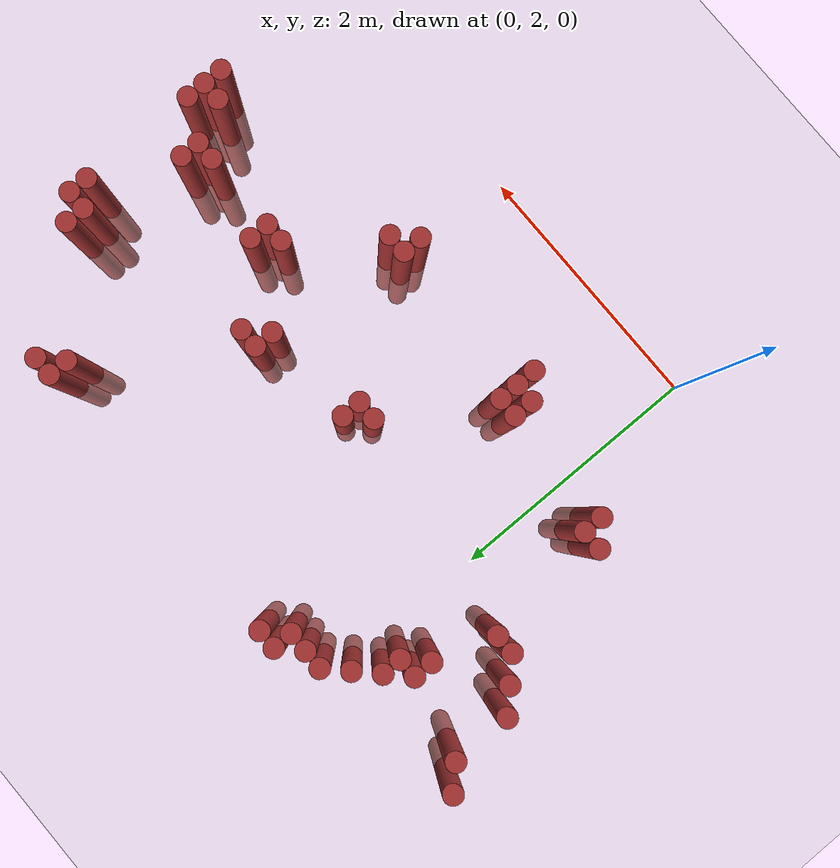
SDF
<sdf version="1.6">
 <world name="default">
  <model name="ground_plane">
   <static>1</static>
   <link name="link">
    <collision name="collision">
     <geometry><plane><normal>0 0 1</normal><size>100 100</size></plane></geometry>
     <surface><friction><ode><mu>100</mu><mu2>50</mu2></ode></friction></surface>
    </collision>
    <visual name="visual">
     <cast_shadows>0</cast_shadows>
     <geometry><plane><normal>0 0 1</normal><size>100 100</size></plane></geometry>
     <material>
      <script><uri>file://media/materials/scripts/gazebo.material</uri><name>Gazebo/Grey</name></script>
     </material>
    </visual>
   </link>
  </model>
  <model name="unit_cylinder_331">
   <static>1</static>
   <pose>-1.025000 5.125000 0.000000 0.000000 0.000000 0.000000</pose>
   <link name="link">
    <inertial>
     <mass>1</mass>
     <inertia><ixx>0.145833</ixx><ixy>0</ixy><ixz>0</ixz><iyy>0.145833</iyy><iyz>0</iyz><izz>0.125</izz></inertia>
    </inertial>
    <collision name="collision">
     <geometry><cylinder><radius>0.075000</radius><length>1.5</length></cylinder></geometry>
    </collision>
    <visual name="visual">
     <geometry><cylinder><radius>0.075000</radius><length>1.5</length></cylinder></geometry>
     <material>
      <ambient>0.648000 0.192000 0.192000 1</ambient>
      <diffuse>0.648000 0.192000 0.192000 1</diffuse>
     </material>
     <material>
      <script><name>Gazebo/Grey</name><uri>file://media/materials/scripts/gazebo.material</uri></script>
     </material>
    </visual>
   </link>
  </model>
  <model name="unit_cylinder_336">
   <static>1</static>
   <pose>-0.875000 4.525000 0.000000 0.000000 0.000000 0.000000</pose>
   <link name="link">
    <inertial>
     <mass>1</mass>
     <inertia><ixx>0.145833</ixx><ixy>0</ixy><ixz>0</ixz><iyy>0.145833</iyy><iyz>0</iyz><izz>0.125</izz></inertia>
    </inertial>
    <collision name="collision">
     <geometry><cylinder><radius>0.075000</radius><length>1.5</length></cylinder></geometry>
    </collision>
    <visual name="visual">
     <geometry><cylinder><radius>0.075000</radius><length>1.5</length></cylinder></geometry>
     <material>
      <ambient>0.648000 0.192000 0.192000 1</ambient>
      <diffuse>0.648000 0.192000 0.192000 1</diffuse>
     </material>
     <material>
      <script><name>Gazebo/Grey</name><uri>file://media/materials/scripts/gazebo.material</uri></script>
     </material>
    </visual>
   </link>
  </model>
  <model name="unit_cylinder_337">
   <static>1</static>
   <pose>-0.875000 4.975000 0.000000 0.000000 0.000000 0.000000</pose>
   <link name="link">
    <inertial>
     <mass>1</mass>
     <inertia><ixx>0.145833</ixx><ixy>0</ixy><ixz>0</ixz><iyy>0.145833</iyy><iyz>0</iyz><izz>0.125</izz></inertia>
    </inertial>
    <collision name="collision">
     <geometry><cylinder><radius>0.075000</radius><length>1.5</length></cylinder></geometry>
    </collision>
    <visual name="visual">
     <geometry><cylinder><radius>0.075000</radius><length>1.5</length></cylinder></geometry>
     <material>
      <ambient>0.648000 0.192000 0.192000 1</ambient>
      <diffuse>0.648000 0.192000 0.192000 1</diffuse>
     </material>
     <material>
      <script><name>Gazebo/Grey</name><uri>file://media/materials/scripts/gazebo.material</uri></script>
     </material>
    </visual>
   </link>
  </model>
  <model name="unit_cylinder_341">
   <static>1</static>
   <pose>-0.725000 4.375000 0.000000 0.000000 0.000000 0.000000</pose>
   <link name="link">
    <inertial>
     <mass>1</mass>
     <inertia><ixx>0.145833</ixx><ixy>0</ixy><ixz>0</ixz><iyy>0.145833</iyy><iyz>0</iyz><izz>0.125</izz></inertia>
    </inertial>
    <collision name="collision">
     <geometry><cylinder><radius>0.075000</radius><length>1.5</length></cylinder></geometry>
    </collision>
    <visual name="visual">
     <geometry><cylinder><radius>0.075000</radius><length>1.5</length></cylinder></geometry>
     <material>
      <ambient>0.648000 0.192000 0.192000 1</ambient>
      <diffuse>0.648000 0.192000 0.192000 1</diffuse>
     </material>
     <material>
      <script><name>Gazebo/Grey</name><uri>file://media/materials/scripts/gazebo.material</uri></script>
     </material>
    </visual>
   </link>
  </model>
  <model name="unit_cylinder_344">
   <static>1</static>
   <pose>-0.575000 4.225000 0.000000 0.000000 0.000000 0.000000</pose>
   <link name="link">
    <inertial>
     <mass>1</mass>
     <inertia><ixx>0.145833</ixx><ixy>0</ixy><ixz>0</ixz><iyy>0.145833</iyy><iyz>0</iyz><izz>0.125</izz></inertia>
    </inertial>
    <collision name="collision">
     <geometry><cylinder><radius>0.075000</radius><length>1.5</length></cylinder></geometry>
    </collision>
    <visual name="visual">
     <geometry><cylinder><radius>0.075000</radius><length>1.5</length></cylinder></geometry>
     <material>
      <ambient>0.648000 0.192000 0.192000 1</ambient>
      <diffuse>0.648000 0.192000 0.192000 1</diffuse>
     </material>
     <material>
      <script><name>Gazebo/Grey</name><uri>file://media/materials/scripts/gazebo.material</uri></script>
     </material>
    </visual>
   </link>
  </model>
  <model name="unit_cylinder_347">
   <static>1</static>
   <pose>-0.425000 3.325000 0.000000 0.000000 0.000000 0.000000</pose>
   <link name="link">
    <inertial>
     <mass>1</mass>
     <inertia><ixx>0.145833</ixx><ixy>0</ixy><ixz>0</ixz><iyy>0.145833</iyy><iyz>0</iyz><izz>0.125</izz></inertia>
    </inertial>
    <collision name="collision">
     <geometry><cylinder><radius>0.075000</radius><length>1.5</length></cylinder></geometry>
    </collision>
    <visual name="visual">
     <geometry><cylinder><radius>0.075000</radius><length>1.5</length></cylinder></geometry>
     <material>
      <ambient>0.648000 0.192000 0.192000 1</ambient>
      <diffuse>0.648000 0.192000 0.192000 1</diffuse>
     </material>
     <material>
      <script><name>Gazebo/Grey</name><uri>file://media/materials/scripts/gazebo.material</uri></script>
     </material>
    </visual>
   </link>
  </model>
  <model name="unit_cylinder_348">
   <static>1</static>
   <pose>-0.425000 4.225000 0.000000 0.000000 0.000000 0.000000</pose>
   <link name="link">
    <inertial>
     <mass>1</mass>
     <inertia><ixx>0.145833</ixx><ixy>0</ixy><ixz>0</ixz><iyy>0.145833</iyy><iyz>0</iyz><izz>0.125</izz></inertia>
    </inertial>
    <collision name="collision">
     <geometry><cylinder><radius>0.075000</radius><length>1.5</length></cylinder></geometry>
    </collision>
    <visual name="visual">
     <geometry><cylinder><radius>0.075000</radius><length>1.5</length></cylinder></geometry>
     <material>
      <ambient>0.648000 0.192000 0.192000 1</ambient>
      <diffuse>0.648000 0.192000 0.192000 1</diffuse>
     </material>
     <material>
      <script><name>Gazebo/Grey</name><uri>file://media/materials/scripts/gazebo.material</uri></script>
     </material>
    </visual>
   </link>
  </model>
  <model name="unit_cylinder_349">
   <static>1</static>
   <pose>-0.275000 3.175000 0.000000 0.000000 0.000000 0.000000</pose>
   <link name="link">
    <inertial>
     <mass>1</mass>
     <inertia><ixx>0.145833</ixx><ixy>0</ixy><ixz>0</ixz><iyy>0.145833</iyy><iyz>0</iyz><izz>0.125</izz></inertia>
    </inertial>
    <collision name="collision">
     <geometry><cylinder><radius>0.075000</radius><length>1.5</length></cylinder></geometry>
    </collision>
    <visual name="visual">
     <geometry><cylinder><radius>0.075000</radius><length>1.5</length></cylinder></geometry>
     <material>
      <ambient>0.648000 0.192000 0.192000 1</ambient>
      <diffuse>0.648000 0.192000 0.192000 1</diffuse>
     </material>
     <material>
      <script><name>Gazebo/Grey</name><uri>file://media/materials/scripts/gazebo.material</uri></script>
     </material>
    </visual>
   </link>
  </model>
  <model name="unit_cylinder_350">
   <static>1</static>
   <pose>-0.275000 3.325000 0.000000 0.000000 0.000000 0.000000</pose>
   <link name="link">
    <inertial>
     <mass>1</mass>
     <inertia><ixx>0.145833</ixx><ixy>0</ixy><ixz>0</ixz><iyy>0.145833</iyy><iyz>0</iyz><izz>0.125</izz></inertia>
    </inertial>
    <collision name="collision">
     <geometry><cylinder><radius>0.075000</radius><length>1.5</length></cylinder></geometry>
    </collision>
    <visual name="visual">
     <geometry><cylinder><radius>0.075000</radius><length>1.5</length></cylinder></geometry>
     <material>
      <ambient>0.648000 0.192000 0.192000 1</ambient>
      <diffuse>0.648000 0.192000 0.192000 1</diffuse>
     </material>
     <material>
      <script><name>Gazebo/Grey</name><uri>file://media/materials/scripts/gazebo.material</uri></script>
     </material>
    </visual>
   </link>
  </model>
  <model name="unit_cylinder_351">
   <static>1</static>
   <pose>-0.275000 4.675000 0.000000 0.000000 0.000000 0.000000</pose>
   <link name="link">
    <inertial>
     <mass>1</mass>
     <inertia><ixx>0.145833</ixx><ixy>0</ixy><ixz>0</ixz><iyy>0.145833</iyy><iyz>0</iyz><izz>0.125</izz></inertia>
    </inertial>
    <collision name="collision">
     <geometry><cylinder><radius>0.075000</radius><length>1.5</length></cylinder></geometry>
    </collision>
    <visual name="visual">
     <geometry><cylinder><radius>0.075000</radius><length>1.5</length></cylinder></geometry>
     <material>
      <ambient>0.648000 0.192000 0.192000 1</ambient>
      <diffuse>0.648000 0.192000 0.192000 1</diffuse>
     </material>
     <material>
      <script><name>Gazebo/Grey</name><uri>file://media/materials/scripts/gazebo.material</uri></script>
     </material>
    </visual>
   </link>
  </model>
  <model name="unit_cylinder_352">
   <static>1</static>
   <pose>-0.275000 4.825000 0.000000 0.000000 0.000000 0.000000</pose>
   <link name="link">
    <inertial>
     <mass>1</mass>
     <inertia><ixx>0.145833</ixx><ixy>0</ixy><ixz>0</ixz><iyy>0.145833</iyy><iyz>0</iyz><izz>0.125</izz></inertia>
    </inertial>
    <collision name="collision">
     <geometry><cylinder><radius>0.075000</radius><length>1.5</length></cylinder></geometry>
    </collision>
    <visual name="visual">
     <geometry><cylinder><radius>0.075000</radius><length>1.5</length></cylinder></geometry>
     <material>
      <ambient>0.648000 0.192000 0.192000 1</ambient>
      <diffuse>0.648000 0.192000 0.192000 1</diffuse>
     </material>
     <material>
      <script><name>Gazebo/Grey</name><uri>file://media/materials/scripts/gazebo.material</uri></script>
     </material>
    </visual>
   </link>
  </model>
  <model name="unit_cylinder_353">
   <static>1</static>
   <pose>-0.125000 4.825000 0.000000 0.000000 0.000000 0.000000</pose>
   <link name="link">
    <inertial>
     <mass>1</mass>
     <inertia><ixx>0.145833</ixx><ixy>0</ixy><ixz>0</ixz><iyy>0.145833</iyy><iyz>0</iyz><izz>0.125</izz></inertia>
    </inertial>
    <collision name="collision">
     <geometry><cylinder><radius>0.075000</radius><length>1.5</length></cylinder></geometry>
    </collision>
    <visual name="visual">
     <geometry><cylinder><radius>0.075000</radius><length>1.5</length></cylinder></geometry>
     <material>
      <ambient>0.648000 0.192000 0.192000 1</ambient>
      <diffuse>0.648000 0.192000 0.192000 1</diffuse>
     </material>
     <material>
      <script><name>Gazebo/Grey</name><uri>file://media/materials/scripts/gazebo.material</uri></script>
     </material>
    </visual>
   </link>
  </model>
  <model name="unit_cylinder_354">
   <static>1</static>
   <pose>-0.125000 4.975000 0.000000 0.000000 0.000000 0.000000</pose>
   <link name="link">
    <inertial>
     <mass>1</mass>
     <inertia><ixx>0.145833</ixx><ixy>0</ixy><ixz>0</ixz><iyy>0.145833</iyy><iyz>0</iyz><izz>0.125</izz></inertia>
    </inertial>
    <collision name="collision">
     <geometry><cylinder><radius>0.075000</radius><length>1.5</length></cylinder></geometry>
    </collision>
    <visual name="visual">
     <geometry><cylinder><radius>0.075000</radius><length>1.5</length></cylinder></geometry>
     <material>
      <ambient>0.648000 0.192000 0.192000 1</ambient>
      <diffuse>0.648000 0.192000 0.192000 1</diffuse>
     </material>
     <material>
      <script><name>Gazebo/Grey</name><uri>file://media/materials/scripts/gazebo.material</uri></script>
     </material>
    </visual>
   </link>
  </model>
  <model name="unit_cylinder_355">
   <static>1</static>
   <pose>0.025000 5.125000 0.000000 0.000000 0.000000 0.000000</pose>
   <link name="link">
    <inertial>
     <mass>1</mass>
     <inertia><ixx>0.145833</ixx><ixy>0</ixy><ixz>0</ixz><iyy>0.145833</iyy><iyz>0</iyz><izz>0.125</izz></inertia>
    </inertial>
    <collision name="collision">
     <geometry><cylinder><radius>0.075000</radius><length>1.5</length></cylinder></geometry>
    </collision>
    <visual name="visual">
     <geometry><cylinder><radius>0.075000</radius><length>1.5</length></cylinder></geometry>
     <material>
      <ambient>0.648000 0.192000 0.192000 1</ambient>
      <diffuse>0.648000 0.192000 0.192000 1</diffuse>
     </material>
     <material>
      <script><name>Gazebo/Grey</name><uri>file://media/materials/scripts/gazebo.material</uri></script>
     </material>
    </visual>
   </link>
  </model>
  <model name="unit_cylinder_356">
   <static>1</static>
   <pose>0.175000 5.275000 0.000000 0.000000 0.000000 0.000000</pose>
   <link name="link">
    <inertial>
     <mass>1</mass>
     <inertia><ixx>0.145833</ixx><ixy>0</ixy><ixz>0</ixz><iyy>0.145833</iyy><iyz>0</iyz><izz>0.125</izz></inertia>
    </inertial>
    <collision name="collision">
     <geometry><cylinder><radius>0.075000</radius><length>1.5</length></cylinder></geometry>
    </collision>
    <visual name="visual">
     <geometry><cylinder><radius>0.075000</radius><length>1.5</length></cylinder></geometry>
     <material>
      <ambient>0.648000 0.192000 0.192000 1</ambient>
      <diffuse>0.648000 0.192000 0.192000 1</diffuse>
     </material>
     <material>
      <script><name>Gazebo/Grey</name><uri>file://media/materials/scripts/gazebo.material</uri></script>
     </material>
    </visual>
   </link>
  </model>
  <model name="unit_cylinder_357">
   <static>1</static>
   <pose>0.325000 5.275000 0.000000 0.000000 0.000000 0.000000</pose>
   <link name="link">
    <inertial>
     <mass>1</mass>
     <inertia><ixx>0.145833</ixx><ixy>0</ixy><ixz>0</ixz><iyy>0.145833</iyy><iyz>0</iyz><izz>0.125</izz></inertia>
    </inertial>
    <collision name="collision">
     <geometry><cylinder><radius>0.075000</radius><length>1.5</length></cylinder></geometry>
    </collision>
    <visual name="visual">
     <geometry><cylinder><radius>0.075000</radius><length>1.5</length></cylinder></geometry>
     <material>
      <ambient>0.648000 0.192000 0.192000 1</ambient>
      <diffuse>0.648000 0.192000 0.192000 1</diffuse>
     </material>
     <material>
      <script><name>Gazebo/Grey</name><uri>file://media/materials/scripts/gazebo.material</uri></script>
     </material>
    </visual>
   </link>
  </model>
  <model name="unit_cylinder_358">
   <static>1</static>
   <pose>0.475000 5.275000 0.000000 0.000000 0.000000 0.000000</pose>
   <link name="link">
    <inertial>
     <mass>1</mass>
     <inertia><ixx>0.145833</ixx><ixy>0</ixy><ixz>0</ixz><iyy>0.145833</iyy><iyz>0</iyz><izz>0.125</izz></inertia>
    </inertial>
    <collision name="collision">
     <geometry><cylinder><radius>0.075000</radius><length>1.5</length></cylinder></geometry>
    </collision>
    <visual name="visual">
     <geometry><cylinder><radius>0.075000</radius><length>1.5</length></cylinder></geometry>
     <material>
      <ambient>0.648000 0.192000 0.192000 1</ambient>
      <diffuse>0.648000 0.192000 0.192000 1</diffuse>
     </material>
     <material>
      <script><name>Gazebo/Grey</name><uri>file://media/materials/scripts/gazebo.material</uri></script>
     </material>
    </visual>
   </link>
  </model>
  <model name="unit_cylinder_359">
   <static>1</static>
   <pose>0.475000 5.425000 0.000000 0.000000 0.000000 0.000000</pose>
   <link name="link">
    <inertial>
     <mass>1</mass>
     <inertia><ixx>0.145833</ixx><ixy>0</ixy><ixz>0</ixz><iyy>0.145833</iyy><iyz>0</iyz><izz>0.125</izz></inertia>
    </inertial>
    <collision name="collision">
     <geometry><cylinder><radius>0.075000</radius><length>1.5</length></cylinder></geometry>
    </collision>
    <visual name="visual">
     <geometry><cylinder><radius>0.075000</radius><length>1.5</length></cylinder></geometry>
     <material>
      <ambient>0.648000 0.192000 0.192000 1</ambient>
      <diffuse>0.648000 0.192000 0.192000 1</diffuse>
     </material>
     <material>
      <script><name>Gazebo/Grey</name><uri>file://media/materials/scripts/gazebo.material</uri></script>
     </material>
    </visual>
   </link>
  </model>
  <model name="unit_cylinder_360">
   <static>1</static>
   <pose>0.625000 3.025000 0.000000 0.000000 0.000000 0.000000</pose>
   <link name="link">
    <inertial>
     <mass>1</mass>
     <inertia><ixx>0.145833</ixx><ixy>0</ixy><ixz>0</ixz><iyy>0.145833</iyy><iyz>0</iyz><izz>0.125</izz></inertia>
    </inertial>
    <collision name="collision">
     <geometry><cylinder><radius>0.075000</radius><length>1.5</length></cylinder></geometry>
    </collision>
    <visual name="visual">
     <geometry><cylinder><radius>0.075000</radius><length>1.5</length></cylinder></geometry>
     <material>
      <ambient>0.648000 0.192000 0.192000 1</ambient>
      <diffuse>0.648000 0.192000 0.192000 1</diffuse>
     </material>
     <material>
      <script><name>Gazebo/Grey</name><uri>file://media/materials/scripts/gazebo.material</uri></script>
     </material>
    </visual>
   </link>
  </model>
  <model name="unit_cylinder_361">
   <static>1</static>
   <pose>0.625000 3.175000 0.000000 0.000000 0.000000 0.000000</pose>
   <link name="link">
    <inertial>
     <mass>1</mass>
     <inertia><ixx>0.145833</ixx><ixy>0</ixy><ixz>0</ixz><iyy>0.145833</iyy><iyz>0</iyz><izz>0.125</izz></inertia>
    </inertial>
    <collision name="collision">
     <geometry><cylinder><radius>0.075000</radius><length>1.5</length></cylinder></geometry>
    </collision>
    <visual name="visual">
     <geometry><cylinder><radius>0.075000</radius><length>1.5</length></cylinder></geometry>
     <material>
      <ambient>0.648000 0.192000 0.192000 1</ambient>
      <diffuse>0.648000 0.192000 0.192000 1</diffuse>
     </material>
     <material>
      <script><name>Gazebo/Grey</name><uri>file://media/materials/scripts/gazebo.material</uri></script>
     </material>
    </visual>
   </link>
  </model>
  <model name="unit_cylinder_362">
   <static>1</static>
   <pose>0.625000 5.425000 0.000000 0.000000 0.000000 0.000000</pose>
   <link name="link">
    <inertial>
     <mass>1</mass>
     <inertia><ixx>0.145833</ixx><ixy>0</ixy><ixz>0</ixz><iyy>0.145833</iyy><iyz>0</iyz><izz>0.125</izz></inertia>
    </inertial>
    <collision name="collision">
     <geometry><cylinder><radius>0.075000</radius><length>1.5</length></cylinder></geometry>
    </collision>
    <visual name="visual">
     <geometry><cylinder><radius>0.075000</radius><length>1.5</length></cylinder></geometry>
     <material>
      <ambient>0.648000 0.192000 0.192000 1</ambient>
      <diffuse>0.648000 0.192000 0.192000 1</diffuse>
     </material>
     <material>
      <script><name>Gazebo/Grey</name><uri>file://media/materials/scripts/gazebo.material</uri></script>
     </material>
    </visual>
   </link>
  </model>
  <model name="unit_cylinder_364">
   <static>1</static>
   <pose>0.775000 2.875000 0.000000 0.000000 0.000000 0.000000</pose>
   <link name="link">
    <inertial>
     <mass>1</mass>
     <inertia><ixx>0.145833</ixx><ixy>0</ixy><ixz>0</ixz><iyy>0.145833</iyy><iyz>0</iyz><izz>0.125</izz></inertia>
    </inertial>
    <collision name="collision">
     <geometry><cylinder><radius>0.075000</radius><length>1.5</length></cylinder></geometry>
    </collision>
    <visual name="visual">
     <geometry><cylinder><radius>0.075000</radius><length>1.5</length></cylinder></geometry>
     <material>
      <ambient>0.648000 0.192000 0.192000 1</ambient>
      <diffuse>0.648000 0.192000 0.192000 1</diffuse>
     </material>
     <material>
      <script><name>Gazebo/Grey</name><uri>file://media/materials/scripts/gazebo.material</uri></script>
     </material>
    </visual>
   </link>
  </model>
  <model name="unit_cylinder_365">
   <static>1</static>
   <pose>0.775000 3.025000 0.000000 0.000000 0.000000 0.000000</pose>
   <link name="link">
    <inertial>
     <mass>1</mass>
     <inertia><ixx>0.145833</ixx><ixy>0</ixy><ixz>0</ixz><iyy>0.145833</iyy><iyz>0</iyz><izz>0.125</izz></inertia>
    </inertial>
    <collision name="collision">
     <geometry><cylinder><radius>0.075000</radius><length>1.5</length></cylinder></geometry>
    </collision>
    <visual name="visual">
     <geometry><cylinder><radius>0.075000</radius><length>1.5</length></cylinder></geometry>
     <material>
      <ambient>0.648000 0.192000 0.192000 1</ambient>
      <diffuse>0.648000 0.192000 0.192000 1</diffuse>
     </material>
     <material>
      <script><name>Gazebo/Grey</name><uri>file://media/materials/scripts/gazebo.material</uri></script>
     </material>
    </visual>
   </link>
  </model>
  <model name="unit_cylinder_366">
   <static>1</static>
   <pose>0.775000 3.175000 0.000000 0.000000 0.000000 0.000000</pose>
   <link name="link">
    <inertial>
     <mass>1</mass>
     <inertia><ixx>0.145833</ixx><ixy>0</ixy><ixz>0</ixz><iyy>0.145833</iyy><iyz>0</iyz><izz>0.125</izz></inertia>
    </inertial>
    <collision name="collision">
     <geometry><cylinder><radius>0.075000</radius><length>1.5</length></cylinder></geometry>
    </collision>
    <visual name="visual">
     <geometry><cylinder><radius>0.075000</radius><length>1.5</length></cylinder></geometry>
     <material>
      <ambient>0.648000 0.192000 0.192000 1</ambient>
      <diffuse>0.648000 0.192000 0.192000 1</diffuse>
     </material>
     <material>
      <script><name>Gazebo/Grey</name><uri>file://media/materials/scripts/gazebo.material</uri></script>
     </material>
    </visual>
   </link>
  </model>
  <model name="unit_cylinder_374">
   <static>1</static>
   <pose>1.225000 3.925000 0.000000 0.000000 0.000000 0.000000</pose>
   <link name="link">
    <inertial>
     <mass>1</mass>
     <inertia><ixx>0.145833</ixx><ixy>0</ixy><ixz>0</ixz><iyy>0.145833</iyy><iyz>0</iyz><izz>0.125</izz></inertia>
    </inertial>
    <collision name="collision">
     <geometry><cylinder><radius>0.075000</radius><length>1.5</length></cylinder></geometry>
    </collision>
    <visual name="visual">
     <geometry><cylinder><radius>0.075000</radius><length>1.5</length></cylinder></geometry>
     <material>
      <ambient>0.648000 0.192000 0.192000 1</ambient>
      <diffuse>0.648000 0.192000 0.192000 1</diffuse>
     </material>
     <material>
      <script><name>Gazebo/Grey</name><uri>file://media/materials/scripts/gazebo.material</uri></script>
     </material>
    </visual>
   </link>
  </model>
  <model name="unit_cylinder_377">
   <static>1</static>
   <pose>1.375000 3.925000 0.000000 0.000000 0.000000 0.000000</pose>
   <link name="link">
    <inertial>
     <mass>1</mass>
     <inertia><ixx>0.145833</ixx><ixy>0</ixy><ixz>0</ixz><iyy>0.145833</iyy><iyz>0</iyz><izz>0.125</izz></inertia>
    </inertial>
    <collision name="collision">
     <geometry><cylinder><radius>0.075000</radius><length>1.5</length></cylinder></geometry>
    </collision>
    <visual name="visual">
     <geometry><cylinder><radius>0.075000</radius><length>1.5</length></cylinder></geometry>
     <material>
      <ambient>0.648000 0.192000 0.192000 1</ambient>
      <diffuse>0.648000 0.192000 0.192000 1</diffuse>
     </material>
     <material>
      <script><name>Gazebo/Grey</name><uri>file://media/materials/scripts/gazebo.material</uri></script>
     </material>
    </visual>
   </link>
  </model>
  <model name="unit_cylinder_378">
   <static>1</static>
   <pose>1.375000 4.075000 0.000000 0.000000 0.000000 0.000000</pose>
   <link name="link">
    <inertial>
     <mass>1</mass>
     <inertia><ixx>0.145833</ixx><ixy>0</ixy><ixz>0</ixz><iyy>0.145833</iyy><iyz>0</iyz><izz>0.125</izz></inertia>
    </inertial>
    <collision name="collision">
     <geometry><cylinder><radius>0.075000</radius><length>1.5</length></cylinder></geometry>
    </collision>
    <visual name="visual">
     <geometry><cylinder><radius>0.075000</radius><length>1.5</length></cylinder></geometry>
     <material>
      <ambient>0.648000 0.192000 0.192000 1</ambient>
      <diffuse>0.648000 0.192000 0.192000 1</diffuse>
     </material>
     <material>
      <script><name>Gazebo/Grey</name><uri>file://media/materials/scripts/gazebo.material</uri></script>
     </material>
    </visual>
   </link>
  </model>
  <model name="unit_cylinder_397">
   <static>1</static>
   <pose>1.975000 2.875000 0.000000 0.000000 0.000000 0.000000</pose>
   <link name="link">
    <inertial>
     <mass>1</mass>
     <inertia><ixx>0.145833</ixx><ixy>0</ixy><ixz>0</ixz><iyy>0.145833</iyy><iyz>0</iyz><izz>0.125</izz></inertia>
    </inertial>
    <collision name="collision">
     <geometry><cylinder><radius>0.075000</radius><length>1.5</length></cylinder></geometry>
    </collision>
    <visual name="visual">
     <geometry><cylinder><radius>0.075000</radius><length>1.5</length></cylinder></geometry>
     <material>
      <ambient>0.648000 0.192000 0.192000 1</ambient>
      <diffuse>0.648000 0.192000 0.192000 1</diffuse>
     </material>
     <material>
      <script><name>Gazebo/Grey</name><uri>file://media/materials/scripts/gazebo.material</uri></script>
     </material>
    </visual>
   </link>
  </model>
  <model name="unit_cylinder_398">
   <static>1</static>
   <pose>1.975000 3.025000 0.000000 0.000000 0.000000 0.000000</pose>
   <link name="link">
    <inertial>
     <mass>1</mass>
     <inertia><ixx>0.145833</ixx><ixy>0</ixy><ixz>0</ixz><iyy>0.145833</iyy><iyz>0</iyz><izz>0.125</izz></inertia>
    </inertial>
    <collision name="collision">
     <geometry><cylinder><radius>0.075000</radius><length>1.5</length></cylinder></geometry>
    </collision>
    <visual name="visual">
     <geometry><cylinder><radius>0.075000</radius><length>1.5</length></cylinder></geometry>
     <material>
      <ambient>0.648000 0.192000 0.192000 1</ambient>
      <diffuse>0.648000 0.192000 0.192000 1</diffuse>
     </material>
     <material>
      <script><name>Gazebo/Grey</name><uri>file://media/materials/scripts/gazebo.material</uri></script>
     </material>
    </visual>
   </link>
  </model>
  <model name="unit_cylinder_401">
   <static>1</static>
   <pose>2.125000 3.025000 0.000000 0.000000 0.000000 0.000000</pose>
   <link name="link">
    <inertial>
     <mass>1</mass>
     <inertia><ixx>0.145833</ixx><ixy>0</ixy><ixz>0</ixz><iyy>0.145833</iyy><iyz>0</iyz><izz>0.125</izz></inertia>
    </inertial>
    <collision name="collision">
     <geometry><cylinder><radius>0.075000</radius><length>1.5</length></cylinder></geometry>
    </collision>
    <visual name="visual">
     <geometry><cylinder><radius>0.075000</radius><length>1.5</length></cylinder></geometry>
     <material>
      <ambient>0.648000 0.192000 0.192000 1</ambient>
      <diffuse>0.648000 0.192000 0.192000 1</diffuse>
     </material>
     <material>
      <script><name>Gazebo/Grey</name><uri>file://media/materials/scripts/gazebo.material</uri></script>
     </material>
    </visual>
   </link>
  </model>
  <model name="unit_cylinder_402">
   <static>1</static>
   <pose>2.125000 4.075000 0.000000 0.000000 0.000000 0.000000</pose>
   <link name="link">
    <inertial>
     <mass>1</mass>
     <inertia><ixx>0.145833</ixx><ixy>0</ixy><ixz>0</ixz><iyy>0.145833</iyy><iyz>0</iyz><izz>0.125</izz></inertia>
    </inertial>
    <collision name="collision">
     <geometry><cylinder><radius>0.075000</radius><length>1.5</length></cylinder></geometry>
    </collision>
    <visual name="visual">
     <geometry><cylinder><radius>0.075000</radius><length>1.5</length></cylinder></geometry>
     <material>
      <ambient>0.648000 0.192000 0.192000 1</ambient>
      <diffuse>0.648000 0.192000 0.192000 1</diffuse>
     </material>
     <material>
      <script><name>Gazebo/Grey</name><uri>file://media/materials/scripts/gazebo.material</uri></script>
     </material>
    </visual>
   </link>
  </model>
  <model name="unit_cylinder_403">
   <static>1</static>
   <pose>2.125000 4.225000 0.000000 0.000000 0.000000 0.000000</pose>
   <link name="link">
    <inertial>
     <mass>1</mass>
     <inertia><ixx>0.145833</ixx><ixy>0</ixy><ixz>0</ixz><iyy>0.145833</iyy><iyz>0</iyz><izz>0.125</izz></inertia>
    </inertial>
    <collision name="collision">
     <geometry><cylinder><radius>0.075000</radius><length>1.5</length></cylinder></geometry>
    </collision>
    <visual name="visual">
     <geometry><cylinder><radius>0.075000</radius><length>1.5</length></cylinder></geometry>
     <material>
      <ambient>0.648000 0.192000 0.192000 1</ambient>
      <diffuse>0.648000 0.192000 0.192000 1</diffuse>
     </material>
     <material>
      <script><name>Gazebo/Grey</name><uri>file://media/materials/scripts/gazebo.material</uri></script>
     </material>
    </visual>
   </link>
  </model>
  <model name="unit_cylinder_404">
   <static>1</static>
   <pose>2.275000 4.225000 0.000000 0.000000 0.000000 0.000000</pose>
   <link name="link">
    <inertial>
     <mass>1</mass>
     <inertia><ixx>0.145833</ixx><ixy>0</ixy><ixz>0</ixz><iyy>0.145833</iyy><iyz>0</iyz><izz>0.125</izz></inertia>
    </inertial>
    <collision name="collision">
     <geometry><cylinder><radius>0.075000</radius><length>1.5</length></cylinder></geometry>
    </collision>
    <visual name="visual">
     <geometry><cylinder><radius>0.075000</radius><length>1.5</length></cylinder></geometry>
     <material>
      <ambient>0.648000 0.192000 0.192000 1</ambient>
      <diffuse>0.648000 0.192000 0.192000 1</diffuse>
     </material>
     <material>
      <script><name>Gazebo/Grey</name><uri>file://media/materials/scripts/gazebo.material</uri></script>
     </material>
    </visual>
   </link>
  </model>
  <model name="unit_cylinder_413">
   <static>1</static>
   <pose>2.575000 3.625000 0.000000 0.000000 0.000000 0.000000</pose>
   <link name="link">
    <inertial>
     <mass>1</mass>
     <inertia><ixx>0.145833</ixx><ixy>0</ixy><ixz>0</ixz><iyy>0.145833</iyy><iyz>0</iyz><izz>0.125</izz></inertia>
    </inertial>
    <collision name="collision">
     <geometry><cylinder><radius>0.075000</radius><length>1.5</length></cylinder></geometry>
    </collision>
    <visual name="visual">
     <geometry><cylinder><radius>0.075000</radius><length>1.5</length></cylinder></geometry>
     <material>
      <ambient>0.648000 0.192000 0.192000 1</ambient>
      <diffuse>0.648000 0.192000 0.192000 1</diffuse>
     </material>
     <material>
      <script><name>Gazebo/Grey</name><uri>file://media/materials/scripts/gazebo.material</uri></script>
     </material>
    </visual>
   </link>
  </model>
  <model name="unit_cylinder_416">
   <static>1</static>
   <pose>2.725000 3.625000 0.000000 0.000000 0.000000 0.000000</pose>
   <link name="link">
    <inertial>
     <mass>1</mass>
     <inertia><ixx>0.145833</ixx><ixy>0</ixy><ixz>0</ixz><iyy>0.145833</iyy><iyz>0</iyz><izz>0.125</izz></inertia>
    </inertial>
    <collision name="collision">
     <geometry><cylinder><radius>0.075000</radius><length>1.5</length></cylinder></geometry>
    </collision>
    <visual name="visual">
     <geometry><cylinder><radius>0.075000</radius><length>1.5</length></cylinder></geometry>
     <material>
      <ambient>0.648000 0.192000 0.192000 1</ambient>
      <diffuse>0.648000 0.192000 0.192000 1</diffuse>
     </material>
     <material>
      <script><name>Gazebo/Grey</name><uri>file://media/materials/scripts/gazebo.material</uri></script>
     </material>
    </visual>
   </link>
  </model>
  <model name="unit_cylinder_417">
   <static>1</static>
   <pose>2.725000 3.775000 0.000000 0.000000 0.000000 0.000000</pose>
   <link name="link">
    <inertial>
     <mass>1</mass>
     <inertia><ixx>0.145833</ixx><ixy>0</ixy><ixz>0</ixz><iyy>0.145833</iyy><iyz>0</iyz><izz>0.125</izz></inertia>
    </inertial>
    <collision name="collision">
     <geometry><cylinder><radius>0.075000</radius><length>1.5</length></cylinder></geometry>
    </collision>
    <visual name="visual">
     <geometry><cylinder><radius>0.075000</radius><length>1.5</length></cylinder></geometry>
     <material>
      <ambient>0.648000 0.192000 0.192000 1</ambient>
      <diffuse>0.648000 0.192000 0.192000 1</diffuse>
     </material>
     <material>
      <script><name>Gazebo/Grey</name><uri>file://media/materials/scripts/gazebo.material</uri></script>
     </material>
    </visual>
   </link>
  </model>
  <model name="unit_cylinder_419">
   <static>1</static>
   <pose>2.875000 5.275000 0.000000 0.000000 0.000000 0.000000</pose>
   <link name="link">
    <inertial>
     <mass>1</mass>
     <inertia><ixx>0.145833</ixx><ixy>0</ixy><ixz>0</ixz><iyy>0.145833</iyy><iyz>0</iyz><izz>0.125</izz></inertia>
    </inertial>
    <collision name="collision">
     <geometry><cylinder><radius>0.075000</radius><length>1.5</length></cylinder></geometry>
    </collision>
    <visual name="visual">
     <geometry><cylinder><radius>0.075000</radius><length>1.5</length></cylinder></geometry>
     <material>
      <ambient>0.648000 0.192000 0.192000 1</ambient>
      <diffuse>0.648000 0.192000 0.192000 1</diffuse>
     </material>
     <material>
      <script><name>Gazebo/Grey</name><uri>file://media/materials/scripts/gazebo.material</uri></script>
     </material>
    </visual>
   </link>
  </model>
  <model name="unit_cylinder_420">
   <static>1</static>
   <pose>2.875000 5.425000 0.000000 0.000000 0.000000 0.000000</pose>
   <link name="link">
    <inertial>
     <mass>1</mass>
     <inertia><ixx>0.145833</ixx><ixy>0</ixy><ixz>0</ixz><iyy>0.145833</iyy><iyz>0</iyz><izz>0.125</izz></inertia>
    </inertial>
    <collision name="collision">
     <geometry><cylinder><radius>0.075000</radius><length>1.5</length></cylinder></geometry>
    </collision>
    <visual name="visual">
     <geometry><cylinder><radius>0.075000</radius><length>1.5</length></cylinder></geometry>
     <material>
      <ambient>0.648000 0.192000 0.192000 1</ambient>
      <diffuse>0.648000 0.192000 0.192000 1</diffuse>
     </material>
     <material>
      <script><name>Gazebo/Grey</name><uri>file://media/materials/scripts/gazebo.material</uri></script>
     </material>
    </visual>
   </link>
  </model>
  <model name="unit_cylinder_424">
   <static>1</static>
   <pose>3.025000 5.425000 0.000000 0.000000 0.000000 0.000000</pose>
   <link name="link">
    <inertial>
     <mass>1</mass>
     <inertia><ixx>0.145833</ixx><ixy>0</ixy><ixz>0</ixz><iyy>0.145833</iyy><iyz>0</iyz><izz>0.125</izz></inertia>
    </inertial>
    <collision name="collision">
     <geometry><cylinder><radius>0.075000</radius><length>1.5</length></cylinder></geometry>
    </collision>
    <visual name="visual">
     <geometry><cylinder><radius>0.075000</radius><length>1.5</length></cylinder></geometry>
     <material>
      <ambient>0.648000 0.192000 0.192000 1</ambient>
      <diffuse>0.648000 0.192000 0.192000 1</diffuse>
     </material>
     <material>
      <script><name>Gazebo/Grey</name><uri>file://media/materials/scripts/gazebo.material</uri></script>
     </material>
    </visual>
   </link>
  </model>
  <model name="unit_cylinder_430">
   <static>1</static>
   <pose>3.325000 3.625000 0.000000 0.000000 0.000000 0.000000</pose>
   <link name="link">
    <inertial>
     <mass>1</mass>
     <inertia><ixx>0.145833</ixx><ixy>0</ixy><ixz>0</ixz><iyy>0.145833</iyy><iyz>0</iyz><izz>0.125</izz></inertia>
    </inertial>
    <collision name="collision">
     <geometry><cylinder><radius>0.075000</radius><length>1.5</length></cylinder></geometry>
    </collision>
    <visual name="visual">
     <geometry><cylinder><radius>0.075000</radius><length>1.5</length></cylinder></geometry>
     <material>
      <ambient>0.648000 0.192000 0.192000 1</ambient>
      <diffuse>0.648000 0.192000 0.192000 1</diffuse>
     </material>
     <material>
      <script><name>Gazebo/Grey</name><uri>file://media/materials/scripts/gazebo.material</uri></script>
     </material>
    </visual>
   </link>
  </model>
  <model name="unit_cylinder_432">
   <static>1</static>
   <pose>3.475000 3.625000 0.000000 0.000000 0.000000 0.000000</pose>
   <link name="link">
    <inertial>
     <mass>1</mass>
     <inertia><ixx>0.145833</ixx><ixy>0</ixy><ixz>0</ixz><iyy>0.145833</iyy><iyz>0</iyz><izz>0.125</izz></inertia>
    </inertial>
    <collision name="collision">
     <geometry><cylinder><radius>0.075000</radius><length>1.5</length></cylinder></geometry>
    </collision>
    <visual name="visual">
     <geometry><cylinder><radius>0.075000</radius><length>1.5</length></cylinder></geometry>
     <material>
      <ambient>0.648000 0.192000 0.192000 1</ambient>
      <diffuse>0.648000 0.192000 0.192000 1</diffuse>
     </material>
     <material>
      <script><name>Gazebo/Grey</name><uri>file://media/materials/scripts/gazebo.material</uri></script>
     </material>
    </visual>
   </link>
  </model>
  <model name="unit_cylinder_433">
   <static>1</static>
   <pose>3.475000 3.775000 0.000000 0.000000 0.000000 0.000000</pose>
   <link name="link">
    <inertial>
     <mass>1</mass>
     <inertia><ixx>0.145833</ixx><ixy>0</ixy><ixz>0</ixz><iyy>0.145833</iyy><iyz>0</iyz><izz>0.125</izz></inertia>
    </inertial>
    <collision name="collision">
     <geometry><cylinder><radius>0.075000</radius><length>1.5</length></cylinder></geometry>
    </collision>
    <visual name="visual">
     <geometry><cylinder><radius>0.075000</radius><length>1.5</length></cylinder></geometry>
     <material>
      <ambient>0.648000 0.192000 0.192000 1</ambient>
      <diffuse>0.648000 0.192000 0.192000 1</diffuse>
     </material>
     <material>
      <script><name>Gazebo/Grey</name><uri>file://media/materials/scripts/gazebo.material</uri></script>
     </material>
    </visual>
   </link>
  </model>
  <model name="unit_cylinder_434">
   <static>1</static>
   <pose>3.625000 3.325000 0.000000 0.000000 0.000000 0.000000</pose>
   <link name="link">
    <inertial>
     <mass>1</mass>
     <inertia><ixx>0.145833</ixx><ixy>0</ixy><ixz>0</ixz><iyy>0.145833</iyy><iyz>0</iyz><izz>0.125</izz></inertia>
    </inertial>
    <collision name="collision">
     <geometry><cylinder><radius>0.075000</radius><length>1.5</length></cylinder></geometry>
    </collision>
    <visual name="visual">
     <geometry><cylinder><radius>0.075000</radius><length>1.5</length></cylinder></geometry>
     <material>
      <ambient>0.648000 0.192000 0.192000 1</ambient>
      <diffuse>0.648000 0.192000 0.192000 1</diffuse>
     </material>
     <material>
      <script><name>Gazebo/Grey</name><uri>file://media/materials/scripts/gazebo.material</uri></script>
     </material>
    </visual>
   </link>
  </model>
  <model name="unit_cylinder_435">
   <static>1</static>
   <pose>3.625000 4.525000 0.000000 0.000000 0.000000 0.000000</pose>
   <link name="link">
    <inertial>
     <mass>1</mass>
     <inertia><ixx>0.145833</ixx><ixy>0</ixy><ixz>0</ixz><iyy>0.145833</iyy><iyz>0</iyz><izz>0.125</izz></inertia>
    </inertial>
    <collision name="collision">
     <geometry><cylinder><radius>0.075000</radius><length>1.5</length></cylinder></geometry>
    </collision>
    <visual name="visual">
     <geometry><cylinder><radius>0.075000</radius><length>1.5</length></cylinder></geometry>
     <material>
      <ambient>0.648000 0.192000 0.192000 1</ambient>
      <diffuse>0.648000 0.192000 0.192000 1</diffuse>
     </material>
     <material>
      <script><name>Gazebo/Grey</name><uri>file://media/materials/scripts/gazebo.material</uri></script>
     </material>
    </visual>
   </link>
  </model>
  <model name="unit_cylinder_436">
   <static>1</static>
   <pose>3.625000 4.675000 0.000000 0.000000 0.000000 0.000000</pose>
   <link name="link">
    <inertial>
     <mass>1</mass>
     <inertia><ixx>0.145833</ixx><ixy>0</ixy><ixz>0</ixz><iyy>0.145833</iyy><iyz>0</iyz><izz>0.125</izz></inertia>
    </inertial>
    <collision name="collision">
     <geometry><cylinder><radius>0.075000</radius><length>1.5</length></cylinder></geometry>
    </collision>
    <visual name="visual">
     <geometry><cylinder><radius>0.075000</radius><length>1.5</length></cylinder></geometry>
     <material>
      <ambient>0.648000 0.192000 0.192000 1</ambient>
      <diffuse>0.648000 0.192000 0.192000 1</diffuse>
     </material>
     <material>
      <script><name>Gazebo/Grey</name><uri>file://media/materials/scripts/gazebo.material</uri></script>
     </material>
    </visual>
   </link>
  </model>
  <model name="unit_cylinder_442">
   <static>1</static>
   <pose>3.775000 3.175000 0.000000 0.000000 0.000000 0.000000</pose>
   <link name="link">
    <inertial>
     <mass>1</mass>
     <inertia><ixx>0.145833</ixx><ixy>0</ixy><ixz>0</ixz><iyy>0.145833</iyy><iyz>0</iyz><izz>0.125</izz></inertia>
    </inertial>
    <collision name="collision">
     <geometry><cylinder><radius>0.075000</radius><length>1.5</length></cylinder></geometry>
    </collision>
    <visual name="visual">
     <geometry><cylinder><radius>0.075000</radius><length>1.5</length></cylinder></geometry>
     <material>
      <ambient>0.648000 0.192000 0.192000 1</ambient>
      <diffuse>0.648000 0.192000 0.192000 1</diffuse>
     </material>
     <material>
      <script><name>Gazebo/Grey</name><uri>file://media/materials/scripts/gazebo.material</uri></script>
     </material>
    </visual>
   </link>
  </model>
  <model name="unit_cylinder_443">
   <static>1</static>
   <pose>3.775000 3.325000 0.000000 0.000000 0.000000 0.000000</pose>
   <link name="link">
    <inertial>
     <mass>1</mass>
     <inertia><ixx>0.145833</ixx><ixy>0</ixy><ixz>0</ixz><iyy>0.145833</iyy><iyz>0</iyz><izz>0.125</izz></inertia>
    </inertial>
    <collision name="collision">
     <geometry><cylinder><radius>0.075000</radius><length>1.5</length></cylinder></geometry>
    </collision>
    <visual name="visual">
     <geometry><cylinder><radius>0.075000</radius><length>1.5</length></cylinder></geometry>
     <material>
      <ambient>0.648000 0.192000 0.192000 1</ambient>
      <diffuse>0.648000 0.192000 0.192000 1</diffuse>
     </material>
     <material>
      <script><name>Gazebo/Grey</name><uri>file://media/materials/scripts/gazebo.material</uri></script>
     </material>
    </visual>
   </link>
  </model>
  <model name="unit_cylinder_444">
   <static>1</static>
   <pose>3.775000 3.475000 0.000000 0.000000 0.000000 0.000000</pose>
   <link name="link">
    <inertial>
     <mass>1</mass>
     <inertia><ixx>0.145833</ixx><ixy>0</ixy><ixz>0</ixz><iyy>0.145833</iyy><iyz>0</iyz><izz>0.125</izz></inertia>
    </inertial>
    <collision name="collision">
     <geometry><cylinder><radius>0.075000</radius><length>1.5</length></cylinder></geometry>
    </collision>
    <visual name="visual">
     <geometry><cylinder><radius>0.075000</radius><length>1.5</length></cylinder></geometry>
     <material>
      <ambient>0.648000 0.192000 0.192000 1</ambient>
      <diffuse>0.648000 0.192000 0.192000 1</diffuse>
     </material>
     <material>
      <script><name>Gazebo/Grey</name><uri>file://media/materials/scripts/gazebo.material</uri></script>
     </material>
    </visual>
   </link>
  </model>
  <model name="unit_cylinder_445">
   <static>1</static>
   <pose>3.775000 4.375000 0.000000 0.000000 0.000000 0.000000</pose>
   <link name="link">
    <inertial>
     <mass>1</mass>
     <inertia><ixx>0.145833</ixx><ixy>0</ixy><ixz>0</ixz><iyy>0.145833</iyy><iyz>0</iyz><izz>0.125</izz></inertia>
    </inertial>
    <collision name="collision">
     <geometry><cylinder><radius>0.075000</radius><length>1.5</length></cylinder></geometry>
    </collision>
    <visual name="visual">
     <geometry><cylinder><radius>0.075000</radius><length>1.5</length></cylinder></geometry>
     <material>
      <ambient>0.648000 0.192000 0.192000 1</ambient>
      <diffuse>0.648000 0.192000 0.192000 1</diffuse>
     </material>
     <material>
      <script><name>Gazebo/Grey</name><uri>file://media/materials/scripts/gazebo.material</uri></script>
     </material>
    </visual>
   </link>
  </model>
  <model name="unit_cylinder_446">
   <static>1</static>
   <pose>3.775000 4.525000 0.000000 0.000000 0.000000 0.000000</pose>
   <link name="link">
    <inertial>
     <mass>1</mass>
     <inertia><ixx>0.145833</ixx><ixy>0</ixy><ixz>0</ixz><iyy>0.145833</iyy><iyz>0</iyz><izz>0.125</izz></inertia>
    </inertial>
    <collision name="collision">
     <geometry><cylinder><radius>0.075000</radius><length>1.5</length></cylinder></geometry>
    </collision>
    <visual name="visual">
     <geometry><cylinder><radius>0.075000</radius><length>1.5</length></cylinder></geometry>
     <material>
      <ambient>0.648000 0.192000 0.192000 1</ambient>
      <diffuse>0.648000 0.192000 0.192000 1</diffuse>
     </material>
     <material>
      <script><name>Gazebo/Grey</name><uri>file://media/materials/scripts/gazebo.material</uri></script>
     </material>
    </visual>
   </link>
  </model>
 </world>
</sdf>
